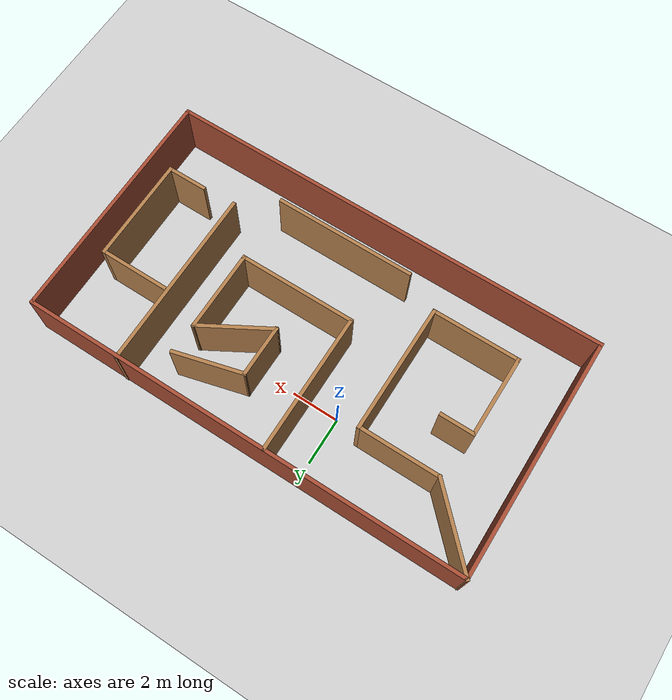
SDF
<sdf version="1.4">
 <world name="default">
  <light name="sun" type="directional">
   <pose>0 0 10 0 -0 0</pose>
   <diffuse>0.8 0.8 0.8 1</diffuse>
   <specular>0.2 0.2 0.2 1</specular>
   <attenuation>
    <range>1000</range>
    <constant>0.9</constant>
    <linear>0.01</linear>
    <quadratic>0.001</quadratic>
   </attenuation>
   <direction>0.5 0.1 -0.9</direction>
  </light>
  <model name="ground_plane">
   <static>1</static>
   <link name="link">
    <collision name="collision">
     <geometry><plane><normal>0 0 1</normal><size>100 100</size></plane></geometry>
     <surface><friction><ode><mu>100</mu><mu2>50</mu2></ode></friction></surface>
    </collision>
    <visual name="visual">
     <cast_shadows>0</cast_shadows>
     <geometry><plane><normal>0 0 1</normal><size>100 100</size></plane></geometry>
     <material>
      <script><uri>file://media/materials/scripts/gazebo.material</uri><name>Gazebo/Grey</name></script>
     </material>
    </visual>
    <velocity_decay><linear>0</linear><angular>0</angular></velocity_decay>
   </link>
  </model>
  <scene><ambient>0.4 0.4 0.4 1</ambient><background>0.7 0.7 0.7 1</background><shadows>0</shadows></scene>
  <physics type="ode">
   <max_step_size>0.01</max_step_size>
   <real_time_factor>1</real_time_factor>
   <real_time_update_rate>0</real_time_update_rate>
   <gravity>0 0 -9.8</gravity>
  </physics>
  <include><uri>model://maa_cenario2</uri><pose>2.4 -2.1 0 0 0 0</pose></include>
 </world>
</sdf>

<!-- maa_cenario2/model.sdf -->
<sdf version='1.7'>
  <model name='maa_cenario2'>
    <link name='Wall_0'>
      <collision name='Wall_0_Collision'>
        <geometry>
          <box>
            <size>10.25 0.15 2.5</size>
          </box>
        </geometry>
        <pose>0 0 1.25 0 -0 0</pose>
      </collision>
      <visual name='Wall_0_Visual'>
        <pose>0 0 1.25 0 -0 0</pose>
        <geometry>
          <box>
            <size>10.25 0.15 2.5</size>
          </box>
        </geometry>
        <material>
          <script>
            <uri>file://media/materials/scripts/gazebo.material</uri>
            <name>Gazebo/Bricks</name>
          </script>
          <ambient>1 1 1 1</ambient>
        </material>
        <meta>
          <layer>0</layer>
        </meta>
      </visual>
      <pose>-9.40947 -0.015533 0 0 -0 1.5708</pose>
    </link>
    <link name='Wall_1'>
      <collision name='Wall_1_Collision'>
        <geometry>
          <box>
            <size>19 0.15 2.5</size>
          </box>
        </geometry>
        <pose>0 0 1.25 0 -0 0</pose>
      </collision>
      <visual name='Wall_1_Visual'>
        <pose>0 0 1.25 0 -0 0</pose>
        <geometry>
          <box>
            <size>19 0.15 2.5</size>
          </box>
        </geometry>
        <material>
          <script>
            <uri>file://media/materials/scripts/gazebo.material</uri>
            <name>Gazebo/Bricks</name>
          </script>
          <ambient>1 1 1 1</ambient>
        </material>
        <meta>
          <layer>0</layer>
        </meta>
      </visual>
      <pose>0.015532 5.03447 0 0 -0 0</pose>
    </link>
    <link name='Wall_10'>
      <collision name='Wall_10_Collision'>
        <geometry>
          <box>
            <size>1.5 0.15 2.5</size>
          </box>
        </geometry>
        <pose>0 0 1.25 0 -0 0</pose>
      </collision>
      <visual name='Wall_10_Visual'>
        <pose>0 0 1.25 0 -0 0</pose>
        <geometry>
          <box>
            <size>1.5 0.15 2.5</size>
          </box>
        </geometry>
        <material>
          <script>
            <uri>file://media/materials/scripts/gazebo.material</uri>
            <name>Gazebo/Wood</name>
          </script>
          <ambient>1 1 1 1</ambient>
        </material>
        <meta>
          <layer>0</layer>
        </meta>
      </visual>
      <pose>-6.43888 0.488883 0 0 -0 0</pose>
    </link>
    <link name='Wall_12'>
      <collision name='Wall_12_Collision'>
        <geometry>
          <box>
            <size>6 0.15 2.5</size>
          </box>
        </geometry>
        <pose>0 0 1.25 0 -0 0</pose>
      </collision>
      <visual name='Wall_12_Visual'>
        <pose>0 0 1.25 0 -0 0</pose>
        <geometry>
          <box>
            <size>6 0.15 2.5</size>
          </box>
        </geometry>
        <material>
          <script>
            <uri>file://media/materials/scripts/gazebo.material</uri>
            <name>Gazebo/Wood</name>
          </script>
          <ambient>1 1 1 1</ambient>
        </material>
        <meta>
          <layer>0</layer>
        </meta>
      </visual>
      <pose>-1.09072 2.08101 0 0 -0 -1.5708</pose>
    </link>
    <link name='Wall_13'>
      <collision name='Wall_13_Collision'>
        <geometry>
          <box>
            <size>5 0.15 2.5</size>
          </box>
        </geometry>
        <pose>0 0 1.25 0 -0 0</pose>
      </collision>
      <visual name='Wall_13_Visual'>
        <pose>0 0 1.25 0 -0 0</pose>
        <geometry>
          <box>
            <size>5 0.15 2.5</size>
          </box>
        </geometry>
        <material>
          <script>
            <uri>file://media/materials/scripts/gazebo.material</uri>
            <name>Gazebo/Wood</name>
          </script>
          <ambient>1 1 1 1</ambient>
        </material>
        <meta>
          <layer>0</layer>
        </meta>
      </visual>
      <pose>1.33428 -0.843986 0 0 -0 0</pose>
    </link>
    <link name='Wall_14'>
      <collision name='Wall_14_Collision'>
        <geometry>
          <box>
            <size>3.5 0.15 2.5</size>
          </box>
        </geometry>
        <pose>0 0 1.25 0 -0 0</pose>
      </collision>
      <visual name='Wall_14_Visual'>
        <pose>0 0 1.25 0 -0 0</pose>
        <geometry>
          <box>
            <size>3.5 0.15 2.5</size>
          </box>
        </geometry>
        <material>
          <script>
            <uri>file://media/materials/scripts/gazebo.material</uri>
            <name>Gazebo/Wood</name>
          </script>
          <ambient>1 1 1 1</ambient>
        </material>
        <meta>
          <layer>0</layer>
        </meta>
      </visual>
      <pose>3.75928 0.831014 0 0 -0 1.5708</pose>
    </link>
    <link name='Wall_15'>
      <collision name='Wall_15_Collision'>
        <geometry>
          <box>
            <size>3.25 0.15 2.5</size>
          </box>
        </geometry>
        <pose>0 0 1.25 0 -0 0</pose>
      </collision>
      <visual name='Wall_15_Visual'>
        <pose>0 0 1.25 0 -0 0</pose>
        <geometry>
          <box>
            <size>3.25 0.15 2.5</size>
          </box>
        </geometry>
        <material>
          <script>
            <uri>file://media/materials/scripts/gazebo.material</uri>
            <name>Gazebo/Wood</name>
          </script>
          <ambient>1 1 1 1</ambient>
        </material>
        <meta>
          <layer>0</layer>
        </meta>
      </visual>
      <pose>2.41694 1.73101 0 0 -0 -2.61799</pose>
    </link>
    <link name='Wall_16'>
      <collision name='Wall_16_Collision'>
        <geometry>
          <box>
            <size>2.25 0.15 2.5</size>
          </box>
        </geometry>
        <pose>0 0 1.25 0 -0 0</pose>
      </collision>
      <visual name='Wall_16_Visual'>
        <pose>0 0 1.25 0 -0 0</pose>
        <geometry>
          <box>
            <size>2.25 0.15 2.5</size>
          </box>
        </geometry>
        <material>
          <script>
            <uri>file://media/materials/scripts/gazebo.material</uri>
            <name>Gazebo/Wood</name>
          </script>
          <ambient>1 1 1 1</ambient>
        </material>
        <meta>
          <layer>0</layer>
        </meta>
      </visual>
      <pose>1.0746 2.00601 0 0 -0 1.5708</pose>
    </link>
    <link name='Wall_17'>
      <collision name='Wall_17_Collision'>
        <geometry>
          <box>
            <size>3 0.15 2.5</size>
          </box>
        </geometry>
        <pose>0 0 1.25 0 -0 0</pose>
      </collision>
      <visual name='Wall_17_Visual'>
        <pose>0 0 1.25 0 -0 0</pose>
        <geometry>
          <box>
            <size>3 0.15 2.5</size>
          </box>
        </geometry>
        <material>
          <script>
            <uri>file://media/materials/scripts/gazebo.material</uri>
            <name>Gazebo/Wood</name>
          </script>
          <ambient>1 1 1 1</ambient>
        </material>
        <meta>
          <layer>0</layer>
        </meta>
      </visual>
      <pose>2.45105 3.42483 0 0 -0 0.261799</pose>
    </link>
    <link name='Wall_19'>
      <collision name='Wall_19_Collision'>
        <geometry>
          <box>
            <size>7.75 0.15 2.5</size>
          </box>
        </geometry>
        <pose>0 0 1.25 0 -0 0</pose>
      </collision>
      <visual name='Wall_19_Visual'>
        <pose>0 0 1.25 0 -0 0</pose>
        <geometry>
          <box>
            <size>7.75 0.15 2.5</size>
          </box>
        </geometry>
        <material>
          <script>
            <uri>file://media/materials/scripts/gazebo.material</uri>
            <name>Gazebo/Wood</name>
          </script>
          <ambient>1 1 1 1</ambient>
        </material>
        <meta>
          <layer>0</layer>
        </meta>
      </visual>
      <pose>5.42633 1.25921 0 0 -0 -1.5708</pose>
    </link>
    <link name='Wall_2'>
      <collision name='Wall_2_Collision'>
        <geometry>
          <box>
            <size>10.25 0.15 2.5</size>
          </box>
        </geometry>
        <pose>0 0 1.25 0 -0 0</pose>
      </collision>
      <visual name='Wall_2_Visual'>
        <pose>0 0 1.25 0 -0 0</pose>
        <geometry>
          <box>
            <size>10.25 0.15 2.5</size>
          </box>
        </geometry>
        <material>
          <script>
            <uri>file://media/materials/scripts/gazebo.material</uri>
            <name>Gazebo/Bricks</name>
          </script>
          <ambient>1 1 1 1</ambient>
        </material>
        <meta>
          <layer>0</layer>
        </meta>
      </visual>
      <pose>9.44053 -0.015533 0 0 -0 -1.5708</pose>
    </link>
    <link name='Wall_21'>
      <collision name='Wall_21_Collision'>
        <geometry>
          <box>
            <size>3 0.15 2.5</size>
          </box>
        </geometry>
        <pose>0 0 1.25 0 -0 0</pose>
      </collision>
      <visual name='Wall_21_Visual'>
        <pose>0 0 1.25 0 -0 0</pose>
        <geometry>
          <box>
            <size>3 0.15 2.5</size>
          </box>
        </geometry>
        <material>
          <script>
            <uri>file://media/materials/scripts/gazebo.material</uri>
            <name>Gazebo/Wood</name>
          </script>
          <ambient>1 1 1 1</ambient>
        </material>
        <meta>
          <layer>0</layer>
        </meta>
      </visual>
      <pose>7.01093 1.86719 0 0 -0 0</pose>
    </link>
    <link name='Wall_22'>
      <collision name='Wall_22_Collision'>
        <geometry>
          <box>
            <size>4.5 0.15 2.5</size>
          </box>
        </geometry>
        <pose>0 0 1.25 0 -0 0</pose>
      </collision>
      <visual name='Wall_22_Visual'>
        <pose>0 0 1.25 0 -0 0</pose>
        <geometry>
          <box>
            <size>4.5 0.15 2.5</size>
          </box>
        </geometry>
        <material>
          <script>
            <uri>file://media/materials/scripts/gazebo.material</uri>
            <name>Gazebo/Wood</name>
          </script>
          <ambient>1 1 1 1</ambient>
        </material>
        <meta>
          <layer>0</layer>
        </meta>
      </visual>
      <pose>8.43593 -0.307809 0 0 -0 -1.5708</pose>
    </link>
    <link name='Wall_23'>
      <collision name='Wall_23_Collision'>
        <geometry>
          <box>
            <size>1.75 0.15 2.5</size>
          </box>
        </geometry>
        <pose>0 0 1.25 0 -0 0</pose>
      </collision>
      <visual name='Wall_23_Visual'>
        <pose>0 0 1.25 0 -0 0</pose>
        <geometry>
          <box>
            <size>1.75 0.15 2.5</size>
          </box>
        </geometry>
        <material>
          <script>
            <uri>file://media/materials/scripts/gazebo.material</uri>
            <name>Gazebo/Wood</name>
          </script>
          <ambient>1 1 1 1</ambient>
        </material>
        <meta>
          <layer>0</layer>
        </meta>
      </visual>
      <pose>7.63593 -2.48281 0 0 -0 3.14159</pose>
    </link>
    <link name='Wall_25'>
      <collision name='Wall_25_Collision'>
        <geometry>
          <box>
            <size>6 0.15 2.5</size>
          </box>
        </geometry>
        <pose>0 0 1.25 0 -0 0</pose>
      </collision>
      <visual name='Wall_25_Visual'>
        <pose>0 0 1.25 0 -0 0</pose>
        <geometry>
          <box>
            <size>6 0.15 2.5</size>
          </box>
        </geometry>
        <material>
          <script>
            <uri>file://media/materials/scripts/gazebo.material</uri>
            <name>Gazebo/Wood</name>
          </script>
          <ambient>1 1 1 1</ambient>
        </material>
        <meta>
          <layer>0</layer>
        </meta>
      </visual>
      <pose>0.983074 -3.69225 0 0 -0 0</pose>
    </link>
    <link name='Wall_3'>
      <collision name='Wall_3_Collision'>
        <geometry>
          <box>
            <size>19 0.15 2.5</size>
          </box>
        </geometry>
        <pose>0 0 1.25 0 -0 0</pose>
      </collision>
      <visual name='Wall_3_Visual'>
        <pose>0 0 1.25 0 -0 0</pose>
        <geometry>
          <box>
            <size>19 0.15 2.5</size>
          </box>
        </geometry>
        <material>
          <script>
            <uri>file://media/materials/scripts/gazebo.material</uri>
            <name>Gazebo/Bricks</name>
          </script>
          <ambient>1 1 1 1</ambient>
        </material>
        <meta>
          <layer>0</layer>
        </meta>
      </visual>
      <pose>0.015532 -5.06553 0 0 -0 3.14159</pose>
    </link>
    <link name='Wall_5'>
      <collision name='Wall_5_Collision'>
        <geometry>
          <box>
            <size>3.75 0.15 2.5</size>
          </box>
        </geometry>
        <pose>0 0 1.25 0 -0 0</pose>
      </collision>
      <visual name='Wall_5_Visual'>
        <pose>0 0 1.25 0 -0 0</pose>
        <geometry>
          <box>
            <size>3.75 0.15 2.5</size>
          </box>
        </geometry>
        <material>
          <script>
            <uri>file://media/materials/scripts/gazebo.material</uri>
            <name>Gazebo/Wood</name>
          </script>
          <ambient>1 1 1 1</ambient>
        </material>
        <meta>
          <layer>0</layer>
        </meta>
      </visual>
      <pose>-8.13668 3.76167 0 0 -0 -0.785398</pose>
    </link>
    <link name='Wall_6'>
      <collision name='Wall_6_Collision'>
        <geometry>
          <box>
            <size>3.5 0.15 2.5</size>
          </box>
        </geometry>
        <pose>0 0 1.25 0 -0 0</pose>
      </collision>
      <visual name='Wall_6_Visual'>
        <pose>0 0 1.25 0 -0 0</pose>
        <geometry>
          <box>
            <size>3.5 0.15 2.5</size>
          </box>
        </geometry>
        <material>
          <script>
            <uri>file://media/materials/scripts/gazebo.material</uri>
            <name>Gazebo/Wood</name>
          </script>
          <ambient>1 1 1 1</ambient>
        </material>
        <meta>
          <layer>0</layer>
        </meta>
      </visual>
      <pose>-5.18888 2.48888 0 0 -0 0</pose>
    </link>
    <link name='Wall_7'>
      <collision name='Wall_7_Collision'>
        <geometry>
          <box>
            <size>5.5 0.15 2.5</size>
          </box>
        </geometry>
        <pose>0 0 1.25 0 -0 0</pose>
      </collision>
      <visual name='Wall_7_Visual'>
        <pose>0 0 1.25 0 -0 0</pose>
        <geometry>
          <box>
            <size>5.5 0.15 2.5</size>
          </box>
        </geometry>
        <material>
          <script>
            <uri>file://media/materials/scripts/gazebo.material</uri>
            <name>Gazebo/Wood</name>
          </script>
          <ambient>1 1 1 1</ambient>
        </material>
        <meta>
          <layer>0</layer>
        </meta>
      </visual>
      <pose>-3.51388 -0.186117 0 0 -0 -1.5708</pose>
    </link>
    <link name='Wall_8'>
      <collision name='Wall_8_Collision'>
        <geometry>
          <box>
            <size>3.75 0.15 2.5</size>
          </box>
        </geometry>
        <pose>0 0 1.25 0 -0 0</pose>
      </collision>
      <visual name='Wall_8_Visual'>
        <pose>0 0 1.25 0 -0 0</pose>
        <geometry>
          <box>
            <size>3.75 0.15 2.5</size>
          </box>
        </geometry>
        <material>
          <script>
            <uri>file://media/materials/scripts/gazebo.material</uri>
            <name>Gazebo/Wood</name>
          </script>
          <ambient>1 1 1 1</ambient>
        </material>
        <meta>
          <layer>0</layer>
        </meta>
      </visual>
      <pose>-5.31388 -2.86112 0 0 -0 3.14159</pose>
    </link>
    <link name='Wall_9'>
      <collision name='Wall_9_Collision'>
        <geometry>
          <box>
            <size>3.5 0.15 2.5</size>
          </box>
        </geometry>
        <pose>0 0 1.25 0 -0 0</pose>
      </collision>
      <visual name='Wall_9_Visual'>
        <pose>0 0 1.25 0 -0 0</pose>
        <geometry>
          <box>
            <size>3.5 0.15 2.5</size>
          </box>
        </geometry>
        <material>
          <script>
            <uri>file://media/materials/scripts/gazebo.material</uri>
            <name>Gazebo/Wood</name>
          </script>
          <ambient>1 1 1 1</ambient>
        </material>
        <meta>
          <layer>0</layer>
        </meta>
      </visual>
      <pose>-7.11388 -1.18612 0 0 -0 1.5708</pose>
    </link>
    <static>1</static>
  </model>
</sdf>
